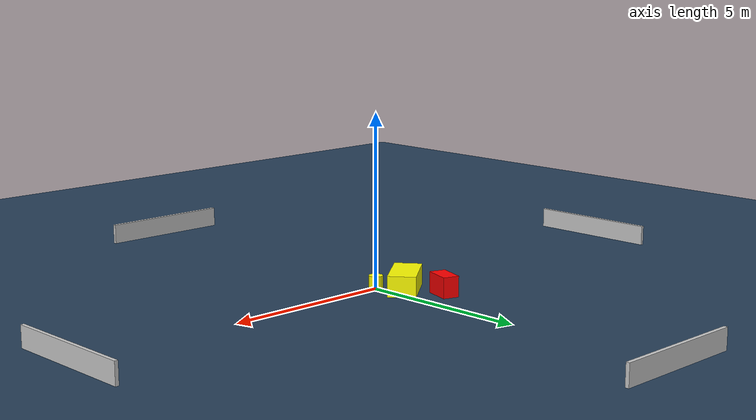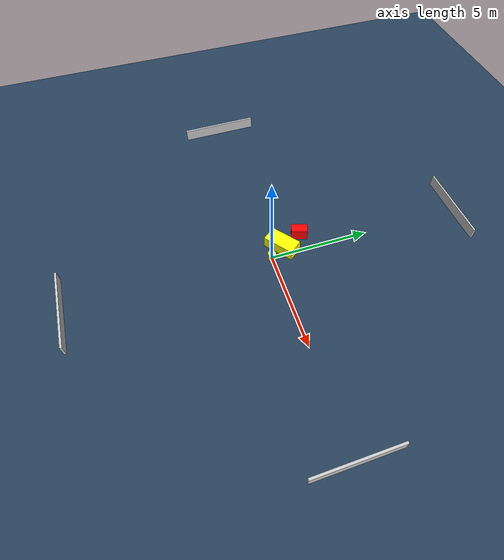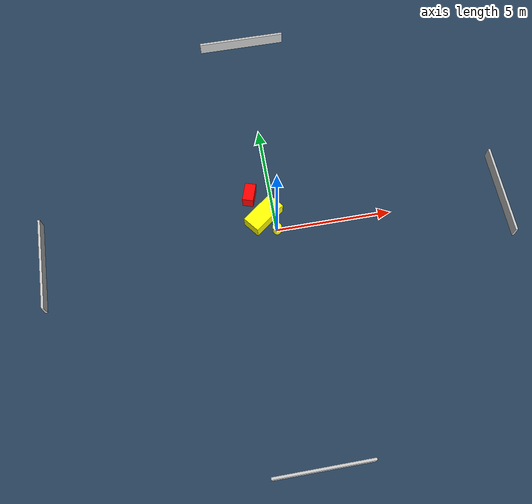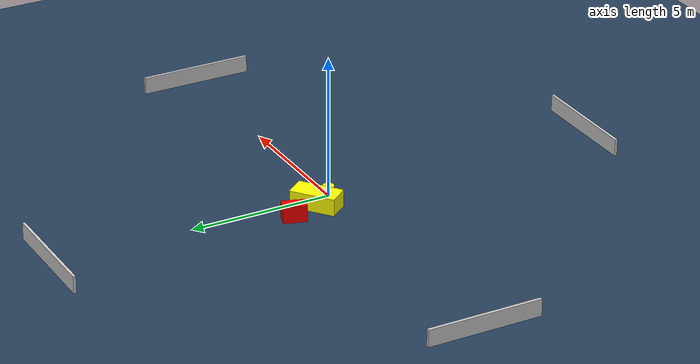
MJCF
<?xml version="1.0" ?>
<mujoco model="generated_environment">
  <option timestep="0.01" integrator="RK4" cone="elliptic"/>
  <default>
    <geom density="1"/>
  </default>
  <asset>
    <texture builtin="gradient" height="3072" name="skybox" rgb1="0.3 0.5 0.7" rgb2="0 0 0" type="skybox" width="512"/>
    <texture builtin="checker" height="300" name="groundplane" rgb1="0.2 0.3 0.4" rgb2="0.1 0.2 0.3" type="2d" width="300"/>
    <material name="groundplane" reflectance="0.2" texrepeat="5 5" texture="groundplane"/>
  </asset>
  <worldbody>
    <light dir="0 0 -1" directional="true" pos="0 0 1.5"/>
    <geom condim="3" friction="0.5 0.005 0.001" material="groundplane" name="floor" pos="0 0 0" size="0 0 0.05" type="plane"/>
    <body name="walls">
      <geom name="wall_1" condim="4" pos="-10.0 0.0 0.3" rgba="0.800000011920929 0.800000011920929 0.800000011920929 1.0" size="0.05 2.0 0.3" type="box"/>
      <geom name="wall_2" condim="4" pos="10.0 0.0 0.3" rgba="0.800000011920929 0.800000011920929 0.800000011920929 1.0" size="0.05 2.0 0.3" type="box"/>
      <geom name="wall_3" condim="4" pos="0.0 -10.0 0.3" rgba="0.800000011920929 0.800000011920929 0.800000011920929 1.0" size="2.0 0.05 0.3" type="box"/>
      <geom name="wall_4" condim="4" pos="0.0 10.0 0.3" rgba="0.800000011920929 0.800000011920929 0.800000011920929 1.0" size="2.0 0.05 0.3" type="box"/>
    </body>
    <body name="robot">
      <joint name="joint_x" type="slide" pos="0 0 0" axis="1 0 0"/>
      <joint name="joint_y" type="slide" pos="0 0 0" axis="0 1 0"/>
      <geom name="robot" type="cylinder" pos="0.0 0.0 0.2" size="0.2 0.2 0.0" mass="5.0" friction="1.0 0.005 0.0001" condim="4" rgba="1.0 1.0 0.0 1.0"/>
    </body>
    <body name="obstacle_1_movable">
      <geom name="obstacle_1_movable" condim="4" pos="-0.4684443197981183 0.6888451780423388 0.3" euler="0 0 307.6227699288724" friction="0.0 0.005 0.001" rgba="1.0 1.0 0.0 1.0" size="0.3999553529883966 0.7972201050817578 0.3" type="box" mass="0.1"/>
      <joint type="free"/>
    </body>
    <body name="obstacle_2_static">
      <geom name="obstacle_2_static" condim="4" pos="-0.9260811310544996 1.7599561344094137 0.3" euler="0 0 341.51660071600696" friction="0.0 0.005 0.001" rgba="1.0 0.0 0.0 1.0" size="0.23887164297788066 0.4035494745397963 0.3" type="box"/>
    </body>
  </worldbody>
  <actuator>
    <motor name="actuator_x" joint="joint_x" gear="1" ctrlrange="-1 1"/>
    <motor name="actuator_y" joint="joint_y" gear="1" ctrlrange="-1 1"/>
  </actuator>
</mujoco>
